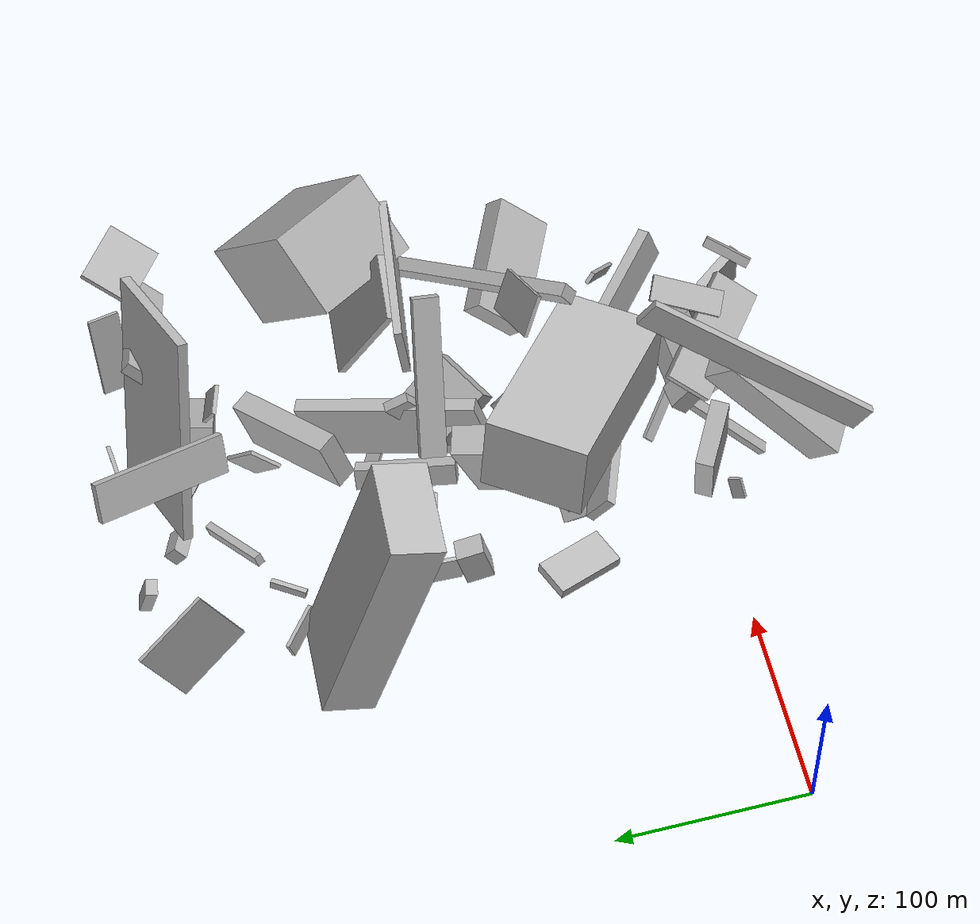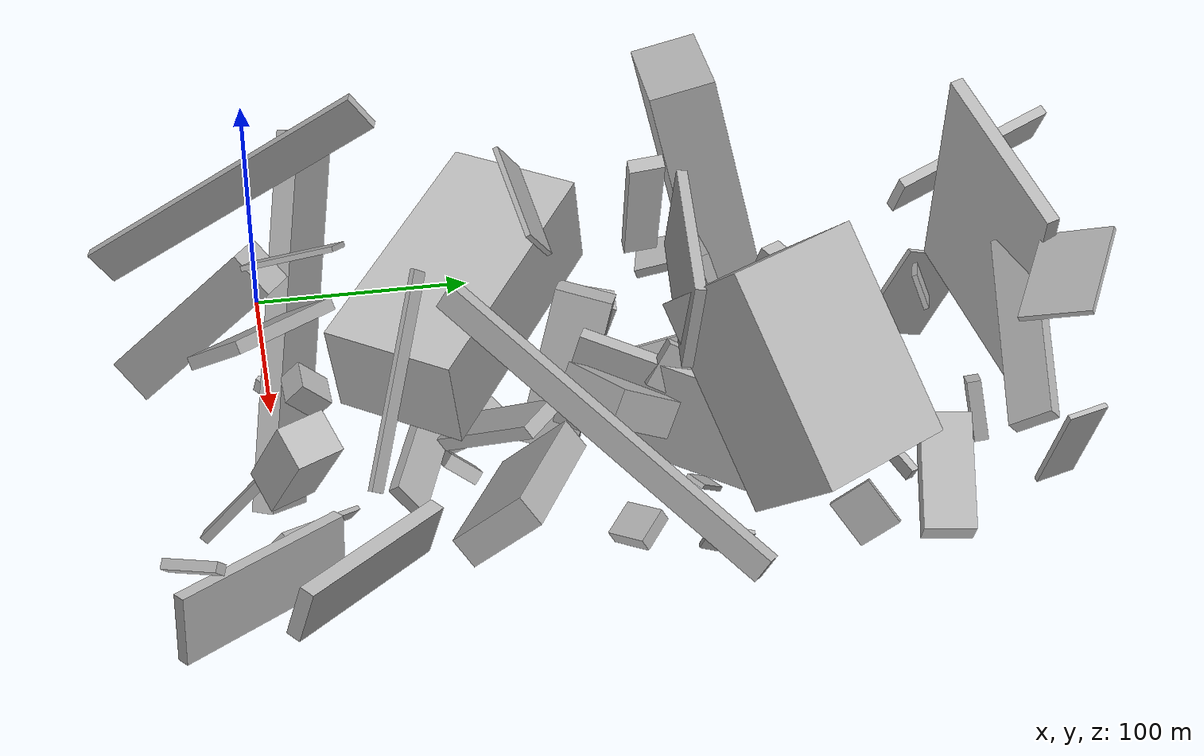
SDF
<sdf version="1.6">
 <world name="default">
  <model name="building_4">
   <static>0</static>
   <pose>182.80358350350366 75.05793901918615 81.25627983369378 0.052977912742376704 -0.2959889521816837 2.4877120915452173</pose>
   <link name="link">
    <gravity>0</gravity>
    <pose>0 0 19.5 0 0 0</pose>
    <collision name="collision"><geometry><box><size>105 52 39</size></box></geometry></collision>
    <visual name="visual">
     <cast_shadows>0</cast_shadows>
     <geometry><box><size>105 52 39</size></box></geometry>
     <material>
      <script>
       <uri>model://HANNAS_wall/materials/scripts</uri>
       <uri>model://HANNAS_wall/materials/textures</uri>
       <name>vrc/HANNAS_wall</name>
      </script>
     </material>
    </visual>
   </link>
  </model>
  <model name="building_5">
   <static>0</static>
   <pose>280.8305112230381 201.21083454206996 117.40529876073163 -1.6112890593165738 -0.9193046591542371 -2.5913730514787088</pose>
   <link name="link">
    <gravity>0</gravity>
    <pose>0 0 27.5 0 0 0</pose>
    <collision name="collision"><geometry><box><size>79 44 55</size></box></geometry></collision>
    <visual name="visual">
     <cast_shadows>0</cast_shadows>
     <geometry><box><size>79 44 55</size></box></geometry>
     <material>
      <script>
       <uri>model://HANNAS_wall/materials/scripts</uri>
       <uri>model://HANNAS_wall/materials/textures</uri>
       <name>vrc/HANNAS_wall</name>
      </script>
     </material>
    </visual>
   </link>
  </model>
  <model name="building_6">
   <static>0</static>
   <pose>282.1729372813604 -36.597284121610826 50.50570288907135 -0.35308780203763046 0.7539027413278987 2.2408650711214086</pose>
   <link name="link">
    <gravity>0</gravity>
    <pose>0 0 2.0 0 0 0</pose>
    <collision name="collision"><geometry><box><size>5 25 4</size></box></geometry></collision>
    <visual name="visual">
     <cast_shadows>0</cast_shadows>
     <geometry><box><size>5 25 4</size></box></geometry>
     <material>
      <script>
       <uri>model://HANNAS_wall/materials/scripts</uri>
       <uri>model://HANNAS_wall/materials/textures</uri>
       <name>vrc/HANNAS_wall</name>
      </script>
     </material>
    </visual>
   </link>
  </model>
  <model name="building_12">
   <static>0</static>
   <pose>154.9563873587294 5.650761414576049 76.65083035795222 1.5159323289314215 0.41175495669101403 2.613163994436163</pose>
   <link name="link">
    <gravity>0</gravity>
    <pose>0 0 4.5 0 0 0</pose>
    <collision name="collision"><geometry><box><size>31 150 9</size></box></geometry></collision>
    <visual name="visual">
     <cast_shadows>0</cast_shadows>
     <geometry><box><size>31 150 9</size></box></geometry>
     <material>
      <script>
       <uri>model://HANNAS_wall/materials/scripts</uri>
       <uri>model://HANNAS_wall/materials/textures</uri>
       <name>vrc/HANNAS_wall</name>
      </script>
     </material>
    </visual>
   </link>
  </model>
  <model name="building_14">
   <static>0</static>
   <pose>188.73639514579293 245.0899746348153 124.96272206139946 -1.2908248602176795 0.5753956940945602 0.47916340130765883</pose>
   <link name="link">
    <gravity>0</gravity>
    <pose>0 0 35.0 0 0 0</pose>
    <collision name="collision"><geometry><box><size>4 20 70</size></box></geometry></collision>
    <visual name="visual">
     <cast_shadows>0</cast_shadows>
     <geometry><box><size>4 20 70</size></box></geometry>
     <material>
      <script>
       <uri>model://HANNAS_wall/materials/scripts</uri>
       <uri>model://HANNAS_wall/materials/textures</uri>
       <name>vrc/HANNAS_wall</name>
      </script>
     </material>
    </visual>
   </link>
  </model>
  <model name="building_18">
   <static>0</static>
   <pose>243.62628033249098 124.98921547650758 24.143643422314117 -1.1151127843351323 -1.0576193037624935 -1.3002501609556982</pose>
   <link name="link">
    <gravity>0</gravity>
    <pose>0 0 8.5 0 0 0</pose>
    <collision name="collision"><geometry><box><size>6 15 17</size></box></geometry></collision>
    <visual name="visual">
     <cast_shadows>0</cast_shadows>
     <geometry><box><size>6 15 17</size></box></geometry>
     <material>
      <script>
       <uri>model://HANNAS_wall/materials/scripts</uri>
       <uri>model://HANNAS_wall/materials/textures</uri>
       <name>vrc/HANNAS_wall</name>
      </script>
     </material>
    </visual>
   </link>
  </model>
  <model name="building_19">
   <static>0</static>
   <pose>201.0057819521384 -11.097750578075441 28.199697078443496 1.6185561497208243 0.8543579153049004 -1.8676976375479786</pose>
   <link name="link">
    <gravity>0</gravity>
    <pose>0 0 3.0 0 0 0</pose>
    <collision name="collision"><geometry><box><size>69 4 6</size></box></geometry></collision>
    <visual name="visual">
     <cast_shadows>0</cast_shadows>
     <geometry><box><size>69 4 6</size></box></geometry>
     <material>
      <script>
       <uri>model://HANNAS_wall/materials/scripts</uri>
       <uri>model://HANNAS_wall/materials/textures</uri>
       <name>vrc/HANNAS_wall</name>
      </script>
     </material>
    </visual>
   </link>
  </model>
  <model name="building_24">
   <static>0</static>
   <pose>184.79832759941667 49.655573684571976 28.877530848192748 2.5118512099150387 -0.18689642946880644 2.784816964141763</pose>
   <link name="link">
    <gravity>0</gravity>
    <pose>0 0 8.5 0 0 0</pose>
    <collision name="collision"><geometry><box><size>45 5 17</size></box></geometry></collision>
    <visual name="visual">
     <cast_shadows>0</cast_shadows>
     <geometry><box><size>45 5 17</size></box></geometry>
     <material>
      <script>
       <uri>model://HANNAS_wall/materials/scripts</uri>
       <uri>model://HANNAS_wall/materials/textures</uri>
       <name>vrc/HANNAS_wall</name>
      </script>
     </material>
    </visual>
   </link>
  </model>
  <model name="building_26">
   <static>0</static>
   <pose>197.83947046262287 277.53757635408533 73.37467138632931 0.2440378320414543 0.4236065094169859 0.26116944950718446</pose>
   <link name="link">
    <gravity>0</gravity>
    <pose>0 0 54.5 0 0 0</pose>
    <collision name="collision"><geometry><box><size>70 5 109</size></box></geometry></collision>
    <visual name="visual">
     <cast_shadows>0</cast_shadows>
     <geometry><box><size>70 5 109</size></box></geometry>
     <material>
      <script>
       <uri>model://HANNAS_wall/materials/scripts</uri>
       <uri>model://HANNAS_wall/materials/textures</uri>
       <name>vrc/HANNAS_wall</name>
      </script>
     </material>
    </visual>
   </link>
  </model>
  <model name="building_33">
   <static>0</static>
   <pose>239.7932896995171 194.93084295848075 42.291740489335425 -0.0018048737827131515 -1.300802228745326 1.159511638491516</pose>
   <link name="link">
    <gravity>0</gravity>
    <pose>0 0 47.0 0 0 0</pose>
    <collision name="collision"><geometry><box><size>41 7 94</size></box></geometry></collision>
    <visual name="visual">
     <cast_shadows>0</cast_shadows>
     <geometry><box><size>41 7 94</size></box></geometry>
     <material>
      <script>
       <uri>model://HANNAS_wall/materials/scripts</uri>
       <uri>model://HANNAS_wall/materials/textures</uri>
       <name>vrc/HANNAS_wall</name>
      </script>
     </material>
    </visual>
   </link>
  </model>
  <model name="building_42">
   <static>0</static>
   <pose>192.7157213353048 124.85466945350338 59.49780146099603 1.3628262631185555 -0.24540779238882335 -0.31049480690275455</pose>
   <link name="link">
    <gravity>0</gravity>
    <pose>0 0 11.5 0 0 0</pose>
    <collision name="collision"><geometry><box><size>15 64 23</size></box></geometry></collision>
    <visual name="visual">
     <cast_shadows>0</cast_shadows>
     <geometry><box><size>15 64 23</size></box></geometry>
     <material>
      <script>
       <uri>model://HANNAS_wall/materials/scripts</uri>
       <uri>model://HANNAS_wall/materials/textures</uri>
       <name>vrc/HANNAS_wall</name>
      </script>
     </material>
    </visual>
   </link>
  </model>
  <model name="building_44">
   <static>0</static>
   <pose>144.52448925676998 187.8369770817975 83.63253837687924 1.557518617228997 0.25014867683263464 -1.6345504022708854</pose>
   <link name="link">
    <gravity>0</gravity>
    <pose>0 0 24.5 0 0 0</pose>
    <collision name="collision"><geometry><box><size>27 150 49</size></box></geometry></collision>
    <visual name="visual">
     <cast_shadows>0</cast_shadows>
     <geometry><box><size>27 150 49</size></box></geometry>
     <material>
      <script>
       <uri>model://HANNAS_wall/materials/scripts</uri>
       <uri>model://HANNAS_wall/materials/textures</uri>
       <name>vrc/HANNAS_wall</name>
      </script>
     </material>
    </visual>
   </link>
  </model>
  <model name="building_51">
   <static>0</static>
   <pose>264.733221526885 172.36234834176554 75.37040072782904 0.32428243443624716 -0.2107488211431847 -0.09069788870111702</pose>
   <link name="link">
    <gravity>0</gravity>
    <pose>0 0 37.0 0 0 0</pose>
    <collision name="collision"><geometry><box><size>33 4 74</size></box></geometry></collision>
    <visual name="visual">
     <cast_shadows>0</cast_shadows>
     <geometry><box><size>33 4 74</size></box></geometry>
     <material>
      <script>
       <uri>model://HANNAS_wall/materials/scripts</uri>
       <uri>model://HANNAS_wall/materials/textures</uri>
       <name>vrc/HANNAS_wall</name>
      </script>
     </material>
    </visual>
   </link>
  </model>
  <model name="building_68">
   <static>0</static>
   <pose>197.68954823277446 85.95492834040306 41.02707966754195 0.3713319054706879 -0.536747820604945 0.49810949543507</pose>
   <link name="link">
    <gravity>0</gravity>
    <pose>0 0 3.0 0 0 0</pose>
    <collision name="collision"><geometry><box><size>67 16 6</size></box></geometry></collision>
    <visual name="visual">
     <cast_shadows>0</cast_shadows>
     <geometry><box><size>67 16 6</size></box></geometry>
     <material>
      <script>
       <uri>model://HANNAS_wall/materials/scripts</uri>
       <uri>model://HANNAS_wall/materials/textures</uri>
       <name>vrc/HANNAS_wall</name>
      </script>
     </material>
    </visual>
   </link>
  </model>
  <model name="building_71">
   <static>0</static>
   <pose>262.8368088394414 -13.914337829048538 28.52626781669997 -1.5646411399307802 -0.03999549623215829 -0.9290117045301228</pose>
   <link name="link">
    <gravity>0</gravity>
    <pose>0 0 2.5 0 0 0</pose>
    <collision name="collision"><geometry><box><size>75 28 5</size></box></geometry></collision>
    <visual name="visual">
     <cast_shadows>0</cast_shadows>
     <geometry><box><size>75 28 5</size></box></geometry>
     <material>
      <script>
       <uri>model://HANNAS_wall/materials/scripts</uri>
       <uri>model://HANNAS_wall/materials/textures</uri>
       <name>vrc/HANNAS_wall</name>
      </script>
     </material>
    </visual>
   </link>
  </model>
  <model name="building_79">
   <static>0</static>
   <pose>144.97532172073107 78.6843841827525 8.695321024136678 -0.0370487934932866 0.1067174064504237 -1.2021800109979863</pose>
   <link name="link">
    <gravity>0</gravity>
    <pose>0 0 3.0 0 0 0</pose>
    <collision name="collision"><geometry><box><size>36 20 6</size></box></geometry></collision>
    <visual name="visual">
     <cast_shadows>0</cast_shadows>
     <geometry><box><size>36 20 6</size></box></geometry>
     <material>
      <script>
       <uri>model://HANNAS_wall/materials/scripts</uri>
       <uri>model://HANNAS_wall/materials/textures</uri>
       <name>vrc/HANNAS_wall</name>
      </script>
     </material>
    </visual>
   </link>
  </model>
  <model name="building_86">
   <static>0</static>
   <pose>229.21808340814266 -4.014487990934506 54.09207085119481 -1.4626850819603021 -0.8847243968433477 0.36858639753987166</pose>
   <link name="link">
    <gravity>0</gravity>
    <pose>0 0 9.5 0 0 0</pose>
    <collision name="collision"><geometry><box><size>46 17 19</size></box></geometry></collision>
    <visual name="visual">
     <cast_shadows>0</cast_shadows>
     <geometry><box><size>46 17 19</size></box></geometry>
     <material>
      <script>
       <uri>model://HANNAS_wall/materials/scripts</uri>
       <uri>model://HANNAS_wall/materials/textures</uri>
       <name>vrc/HANNAS_wall</name>
      </script>
     </material>
    </visual>
   </link>
  </model>
  <model name="building_87">
   <static>0</static>
   <pose>276.87474930274055 112.53352903750906 89.36237907781393 1.053284452702516 -1.0184701785304715 1.3932175354094545</pose>
   <link name="link">
    <gravity>0</gravity>
    <pose>0 0 3.5 0 0 0</pose>
    <collision name="collision"><geometry><box><size>10 150 7</size></box></geometry></collision>
    <visual name="visual">
     <cast_shadows>0</cast_shadows>
     <geometry><box><size>10 150 7</size></box></geometry>
     <material>
      <script>
       <uri>model://HANNAS_wall/materials/scripts</uri>
       <uri>model://HANNAS_wall/materials/textures</uri>
       <name>vrc/HANNAS_wall</name>
      </script>
     </material>
    </visual>
   </link>
  </model>
  <model name="building_94">
   <static>0</static>
   <pose>194.98764021035242 245.1730364768581 18.778830888129193 -1.4973742004381199 -0.4494673796898255 -2.6411898909230405</pose>
   <link name="link">
    <gravity>0</gravity>
    <pose>0 0 2.0 0 0 0</pose>
    <collision name="collision"><geometry><box><size>43 6 4</size></box></geometry></collision>
    <visual name="visual">
     <cast_shadows>0</cast_shadows>
     <geometry><box><size>43 6 4</size></box></geometry>
     <material>
      <script>
       <uri>model://HANNAS_wall/materials/scripts</uri>
       <uri>model://HANNAS_wall/materials/textures</uri>
       <name>vrc/HANNAS_wall</name>
      </script>
     </material>
    </visual>
   </link>
  </model>
  <model name="building_96">
   <static>0</static>
   <pose>283.5645232219683 68.39088656995158 62.831093671311564 -0.8568619608282227 -0.10670012767350853 -0.4429840133270437</pose>
   <link name="link">
    <gravity>0</gravity>
    <pose>0 0 15.5 0 0 0</pose>
    <collision name="collision"><geometry><box><size>61 12 31</size></box></geometry></collision>
    <visual name="visual">
     <cast_shadows>0</cast_shadows>
     <geometry><box><size>61 12 31</size></box></geometry>
     <material>
      <script>
       <uri>model://HANNAS_wall/materials/scripts</uri>
       <uri>model://HANNAS_wall/materials/textures</uri>
       <name>vrc/HANNAS_wall</name>
      </script>
     </material>
    </visual>
   </link>
  </model>
  <model name="building_100">
   <static>0</static>
   <pose>163.3175027391452 -6.54829040491758 132.8515423798928 0.2277947993553356 -0.603644311357102 1.190084627448217</pose>
   <link name="link">
    <gravity>0</gravity>
    <pose>0 0 7.5 0 0 0</pose>
    <collision name="collision"><geometry><box><size>132 4 15</size></box></geometry></collision>
    <visual name="visual">
     <cast_shadows>0</cast_shadows>
     <geometry><box><size>132 4 15</size></box></geometry>
     <material>
      <script>
       <uri>model://HANNAS_wall/materials/scripts</uri>
       <uri>model://HANNAS_wall/materials/textures</uri>
       <name>vrc/HANNAS_wall</name>
      </script>
     </material>
    </visual>
   </link>
  </model>
  <model name="building_102">
   <static>0</static>
   <pose>197.05068423242207 7.87368653762563 65.06146433142462 0.7684974324361102 -0.20761949788170211 -3.099644692266919</pose>
   <link name="link">
    <gravity>0</gravity>
    <pose>0 0 5.0 0 0 0</pose>
    <collision name="collision"><geometry><box><size>14 15 10</size></box></geometry></collision>
    <visual name="visual">
     <cast_shadows>0</cast_shadows>
     <geometry><box><size>14 15 10</size></box></geometry>
     <material>
      <script>
       <uri>model://HANNAS_wall/materials/scripts</uri>
       <uri>model://HANNAS_wall/materials/textures</uri>
       <name>vrc/HANNAS_wall</name>
      </script>
     </material>
    </visual>
   </link>
  </model>
  <model name="building_105">
   <static>0</static>
   <pose>258.4045665779703 259.4052395192392 38.217067799972234 1.6143486060459762 0.7164919999004442 -0.20599987662518712</pose>
   <link name="link">
    <gravity>0</gravity>
    <pose>0 0 10.0 0 0 0</pose>
    <collision name="collision"><geometry><box><size>46 15 20</size></box></geometry></collision>
    <visual name="visual">
     <cast_shadows>0</cast_shadows>
     <geometry><box><size>46 15 20</size></box></geometry>
     <material>
      <script>
       <uri>model://HANNAS_wall/materials/scripts</uri>
       <uri>model://HANNAS_wall/materials/textures</uri>
       <name>vrc/HANNAS_wall</name>
      </script>
     </material>
    </visual>
   </link>
  </model>
  <model name="building_120">
   <static>0</static>
   <pose>222.80487415275718 8.842846656907106 21.487023866916903 0.4118301263867102 -0.5902649508780219 -2.495541873016665</pose>
   <link name="link">
    <gravity>0</gravity>
    <pose>0 0 3.0 0 0 0</pose>
    <collision name="collision"><geometry><box><size>2 52 6</size></box></geometry></collision>
    <visual name="visual">
     <cast_shadows>0</cast_shadows>
     <geometry><box><size>2 52 6</size></box></geometry>
     <material>
      <script>
       <uri>model://HANNAS_wall/materials/scripts</uri>
       <uri>model://HANNAS_wall/materials/textures</uri>
       <name>vrc/HANNAS_wall</name>
      </script>
     </material>
    </visual>
   </link>
  </model>
  <model name="building_129">
   <static>0</static>
   <pose>252.76649434030867 42.89965967738517 101.38300917921957 -0.9663795626660437 0.22961775202047927 -2.384224982997667</pose>
   <link name="link">
    <gravity>0</gravity>
    <pose>0 0 3.0 0 0 0</pose>
    <collision name="collision"><geometry><box><size>2 80 6</size></box></geometry></collision>
    <visual name="visual">
     <cast_shadows>0</cast_shadows>
     <geometry><box><size>2 80 6</size></box></geometry>
     <material>
      <script>
       <uri>model://HANNAS_wall/materials/scripts</uri>
       <uri>model://HANNAS_wall/materials/textures</uri>
       <name>vrc/HANNAS_wall</name>
      </script>
     </material>
    </visual>
   </link>
  </model>
  <model name="building_142">
   <static>0</static>
   <pose>280.6606472069559 282.159119960742 50.40378739966411 0.44476270113769223 -0.07833761941146375 1.8011359726383782</pose>
   <link name="link">
    <gravity>0</gravity>
    <pose>0 0 21.5 0 0 0</pose>
    <collision name="collision"><geometry><box><size>16 2 43</size></box></geometry></collision>
    <visual name="visual">
     <cast_shadows>0</cast_shadows>
     <geometry><box><size>16 2 43</size></box></geometry>
     <material>
      <script>
       <uri>model://HANNAS_wall/materials/scripts</uri>
       <uri>model://HANNAS_wall/materials/textures</uri>
       <name>vrc/HANNAS_wall</name>
      </script>
     </material>
    </visual>
   </link>
  </model>
  <model name="building_148">
   <static>0</static>
   <pose>272.9935659992181 265.2874705503281 112.58389467648365 -2.5723217041317783 -0.583642072720329 1.0126187355645468</pose>
   <link name="link">
    <gravity>0</gravity>
    <pose>0 0 3.0 0 0 0</pose>
    <collision name="collision"><geometry><box><size>17 80 6</size></box></geometry></collision>
    <visual name="visual">
     <cast_shadows>0</cast_shadows>
     <geometry><box><size>17 80 6</size></box></geometry>
     <material>
      <script>
       <uri>model://HANNAS_wall/materials/scripts</uri>
       <uri>model://HANNAS_wall/materials/textures</uri>
       <name>vrc/HANNAS_wall</name>
      </script>
     </material>
    </visual>
   </link>
  </model>
  <model name="building_164">
   <static>0</static>
   <pose>165.1992628782745 157.38300308116342 89.30617300248977 1.021705678414265 -1.1723573151559403 -1.3290419487980647</pose>
   <link name="link">
    <gravity>0</gravity>
    <pose>0 0 9.0 0 0 0</pose>
    <collision name="collision"><geometry><box><size>4 22 18</size></box></geometry></collision>
    <visual name="visual">
     <cast_shadows>0</cast_shadows>
     <geometry><box><size>4 22 18</size></box></geometry>
     <material>
      <script>
       <uri>model://HANNAS_wall/materials/scripts</uri>
       <uri>model://HANNAS_wall/materials/textures</uri>
       <name>vrc/HANNAS_wall</name>
      </script>
     </material>
    </visual>
   </link>
  </model>
  <model name="building_168">
   <static>0</static>
   <pose>292.77227742457313 84.06348936101254 70.34975838269288 0.8632024259589286 1.1815845240260385 -2.555954228664792</pose>
   <link name="link">
    <gravity>0</gravity>
    <pose>0 0 4.0 0 0 0</pose>
    <collision name="collision"><geometry><box><size>2 2 8</size></box></geometry></collision>
    <visual name="visual">
     <cast_shadows>0</cast_shadows>
     <geometry><box><size>2 2 8</size></box></geometry>
     <material>
      <script>
       <uri>model://HANNAS_wall/materials/scripts</uri>
       <uri>model://HANNAS_wall/materials/textures</uri>
       <name>vrc/HANNAS_wall</name>
      </script>
     </material>
    </visual>
   </link>
  </model>
  <model name="building_172">
   <static>0</static>
   <pose>249.76748364898106 143.59678550344267 121.15595691939001 0.11602773695597916 -0.07707295436294058 2.9927620414011034</pose>
   <link name="link">
    <gravity>0</gravity>
    <pose>0 0 16.0 0 0 0</pose>
    <collision name="collision"><geometry><box><size>80 4 32</size></box></geometry></collision>
    <visual name="visual">
     <cast_shadows>0</cast_shadows>
     <geometry><box><size>80 4 32</size></box></geometry>
     <material>
      <script>
       <uri>model://HANNAS_wall/materials/scripts</uri>
       <uri>model://HANNAS_wall/materials/textures</uri>
       <name>vrc/HANNAS_wall</name>
      </script>
     </material>
    </visual>
   </link>
  </model>
  <model name="building_177">
   <static>0</static>
   <pose>248.49588714647624 168.4412995664476 18.451811629545865 2.8608151919829 -0.3473560574651741 -1.5462978007250838</pose>
   <link name="link">
    <gravity>0</gravity>
    <pose>0 0 6.5 0 0 0</pose>
    <collision name="collision"><geometry><box><size>18 2 13</size></box></geometry></collision>
    <visual name="visual">
     <cast_shadows>0</cast_shadows>
     <geometry><box><size>18 2 13</size></box></geometry>
     <material>
      <script>
       <uri>model://HANNAS_wall/materials/scripts</uri>
       <uri>model://HANNAS_wall/materials/textures</uri>
       <name>vrc/HANNAS_wall</name>
      </script>
     </material>
    </visual>
   </link>
  </model>
  <model name="building_178">
   <static>0</static>
   <pose>232.02193947073613 293.04997972606117 60.049961889834506 1.7824408405099683 -1.2403534058390604 3.02582597899931</pose>
   <link name="link">
    <gravity>0</gravity>
    <pose>0 0 1.0 0 0 0</pose>
    <collision name="collision"><geometry><box><size>2 20 2</size></box></geometry></collision>
    <visual name="visual">
     <cast_shadows>0</cast_shadows>
     <geometry><box><size>2 20 2</size></box></geometry>
     <material>
      <script>
       <uri>model://HANNAS_wall/materials/scripts</uri>
       <uri>model://HANNAS_wall/materials/textures</uri>
       <name>vrc/HANNAS_wall</name>
      </script>
     </material>
    </visual>
   </link>
  </model>
  <model name="building_179">
   <static>0</static>
   <pose>204.69328430090488 267.93628572814765 8.32271920632627 -0.40399521191513843 -0.8348429869950846 -1.6585596636374629</pose>
   <link name="link">
    <gravity>0</gravity>
    <pose>0 0 4.0 0 0 0</pose>
    <collision name="collision"><geometry><box><size>8 16 8</size></box></geometry></collision>
    <visual name="visual">
     <cast_shadows>0</cast_shadows>
     <geometry><box><size>8 16 8</size></box></geometry>
     <material>
      <script>
       <uri>model://HANNAS_wall/materials/scripts</uri>
       <uri>model://HANNAS_wall/materials/textures</uri>
       <name>vrc/HANNAS_wall</name>
      </script>
     </material>
    </visual>
   </link>
  </model>
  <model name="building_184">
   <static>0</static>
   <pose>129.93209356553692 230.25147793584244 20.189346611986906 1.4315234407622044 0.2402922324419058 0.8223905128495504</pose>
   <link name="link">
    <gravity>0</gravity>
    <pose>0 0 12.0 0 0 0</pose>
    <collision name="collision"><geometry><box><size>2 10 24</size></box></geometry></collision>
    <visual name="visual">
     <cast_shadows>0</cast_shadows>
     <geometry><box><size>2 10 24</size></box></geometry>
     <material>
      <script>
       <uri>model://HANNAS_wall/materials/scripts</uri>
       <uri>model://HANNAS_wall/materials/textures</uri>
       <name>vrc/HANNAS_wall</name>
      </script>
     </material>
    </visual>
   </link>
  </model>
  <model name="building_187">
   <static>0</static>
   <pose>221.46436710533433 166.72265565588205 21.625145234560108 -0.9490801670253256 -0.29255526679777627 -2.365911231379561</pose>
   <link name="link">
    <gravity>0</gravity>
    <pose>0 0 13.0 0 0 0</pose>
    <collision name="collision"><geometry><box><size>8 2 26</size></box></geometry></collision>
    <visual name="visual">
     <cast_shadows>0</cast_shadows>
     <geometry><box><size>8 2 26</size></box></geometry>
     <material>
      <script>
       <uri>model://HANNAS_wall/materials/scripts</uri>
       <uri>model://HANNAS_wall/materials/textures</uri>
       <name>vrc/HANNAS_wall</name>
      </script>
     </material>
    </visual>
   </link>
  </model>
  <model name="building_190">
   <static>0</static>
   <pose>141.04475078396624 136.8471281402978 64.99626740685493 -2.925865151378262 0.2587876318040471 1.515851479244591</pose>
   <link name="link">
    <gravity>0</gravity>
    <pose>0 0 9.5 0 0 0</pose>
    <collision name="collision"><geometry><box><size>14 12 19</size></box></geometry></collision>
    <visual name="visual">
     <cast_shadows>0</cast_shadows>
     <geometry><box><size>14 12 19</size></box></geometry>
     <material>
      <script>
       <uri>model://HANNAS_wall/materials/scripts</uri>
       <uri>model://HANNAS_wall/materials/textures</uri>
       <name>vrc/HANNAS_wall</name>
      </script>
     </material>
    </visual>
   </link>
  </model>
  <model name="building_193">
   <static>0</static>
   <pose>207.54509011995157 -2.671475326634855 98.32807655428078 0.5109551175016086 -0.1813684836204179 -0.6879201099737895</pose>
   <link name="link">
    <gravity>0</gravity>
    <pose>0 0 2.5 0 0 0</pose>
    <collision name="collision"><geometry><box><size>60 24 5</size></box></geometry></collision>
    <visual name="visual">
     <cast_shadows>0</cast_shadows>
     <geometry><box><size>60 24 5</size></box></geometry>
     <material>
      <script>
       <uri>model://HANNAS_wall/materials/scripts</uri>
       <uri>model://HANNAS_wall/materials/textures</uri>
       <name>vrc/HANNAS_wall</name>
      </script>
     </material>
    </visual>
   </link>
  </model>
  <model name="building_204">
   <static>0</static>
   <pose>218.32761291205944 91.74210478167691 151.05596535832092 0.967579528309521 -0.5741424216073037 -2.9362396673679436</pose>
   <link name="link">
    <gravity>0</gravity>
    <pose>0 0 1.0 0 0 0</pose>
    <collision name="collision"><geometry><box><size>38 21 2</size></box></geometry></collision>
    <visual name="visual">
     <cast_shadows>0</cast_shadows>
     <geometry><box><size>38 21 2</size></box></geometry>
     <material>
      <script>
       <uri>model://HANNAS_wall/materials/scripts</uri>
       <uri>model://HANNAS_wall/materials/textures</uri>
       <name>vrc/HANNAS_wall</name>
      </script>
     </material>
    </visual>
   </link>
  </model>
  <model name="building_212">
   <static>0</static>
   <pose>149.0391910872952 159.1951532734031 30.381510609996546 0.7355096016201296 1.3160683646255584 0.7816038743940866</pose>
   <link name="link">
    <gravity>0</gravity>
    <pose>0 0 1.0 0 0 0</pose>
    <collision name="collision"><geometry><box><size>29 50 2</size></box></geometry></collision>
    <visual name="visual">
     <cast_shadows>0</cast_shadows>
     <geometry><box><size>29 50 2</size></box></geometry>
     <material>
      <script>
       <uri>model://HANNAS_wall/materials/scripts</uri>
       <uri>model://HANNAS_wall/materials/textures</uri>
       <name>vrc/HANNAS_wall</name>
      </script>
     </material>
    </visual>
   </link>
  </model>
  <model name="building_215">
   <static>0</static>
   <pose>230.27851642499525 115.24127190292474 74.5198493097194 2.9987872538507854 -1.0345877092032894 2.2108480389462914</pose>
   <link name="link">
    <gravity>0</gravity>
    <pose>0 0 16.0 0 0 0</pose>
    <collision name="collision"><geometry><box><size>15 32 32</size></box></geometry></collision>
    <visual name="visual">
     <cast_shadows>0</cast_shadows>
     <geometry><box><size>15 32 32</size></box></geometry>
     <material>
      <script>
       <uri>model://HANNAS_wall/materials/scripts</uri>
       <uri>model://HANNAS_wall/materials/textures</uri>
       <name>vrc/HANNAS_wall</name>
      </script>
     </material>
    </visual>
   </link>
  </model>
  <model name="building_223">
   <static>0</static>
   <pose>171.22753916448585 71.21002074599028 10.788201649840605 0.9446451834926625 -0.8115848030455926 2.118011542018187</pose>
   <link name="link">
    <gravity>0</gravity>
    <pose>0 0 8.5 0 0 0</pose>
    <collision name="collision"><geometry><box><size>6 15 17</size></box></geometry></collision>
    <visual name="visual">
     <cast_shadows>0</cast_shadows>
     <geometry><box><size>6 15 17</size></box></geometry>
     <material>
      <script>
       <uri>model://HANNAS_wall/materials/scripts</uri>
       <uri>model://HANNAS_wall/materials/textures</uri>
       <name>vrc/HANNAS_wall</name>
      </script>
     </material>
    </visual>
   </link>
  </model>
  <model name="building_232">
   <static>0</static>
   <pose>180.25809269194286 294.31697720335984 17.1448955614884 2.3436675600126775 1.3123541542685193 0.6042475722250616</pose>
   <link name="link">
    <gravity>0</gravity>
    <pose>0 0 3.0 0 0 0</pose>
    <collision name="collision"><geometry><box><size>27 8 6</size></box></geometry></collision>
    <visual name="visual">
     <cast_shadows>0</cast_shadows>
     <geometry><box><size>27 8 6</size></box></geometry>
     <material>
      <script>
       <uri>model://HANNAS_wall/materials/scripts</uri>
       <uri>model://HANNAS_wall/materials/textures</uri>
       <name>vrc/HANNAS_wall</name>
      </script>
     </material>
    </visual>
   </link>
  </model>
  <model name="building_235">
   <static>0</static>
   <pose>170.06595666554517 222.47505518312082 6.159244128794965 -0.020725497446174617 -0.29315401378745504 2.569485465814824</pose>
   <link name="link">
    <gravity>0</gravity>
    <pose>0 0 2.0 0 0 0</pose>
    <collision name="collision"><geometry><box><size>3 19 4</size></box></geometry></collision>
    <visual name="visual">
     <cast_shadows>0</cast_shadows>
     <geometry><box><size>3 19 4</size></box></geometry>
     <material>
      <script>
       <uri>model://HANNAS_wall/materials/scripts</uri>
       <uri>model://HANNAS_wall/materials/textures</uri>
       <name>vrc/HANNAS_wall</name>
      </script>
     </material>
    </visual>
   </link>
  </model>
  <model name="building_237">
   <static>0</static>
   <pose>163.00844323273978 -22.224791698915556 87.27379032128265 -1.5215244069343365 0.7859103165007365 -2.068458029621007</pose>
   <link name="link">
    <gravity>0</gravity>
    <pose>0 0 8.0 0 0 0</pose>
    <collision name="collision"><geometry><box><size>80 19 16</size></box></geometry></collision>
    <visual name="visual">
     <cast_shadows>0</cast_shadows>
     <geometry><box><size>80 19 16</size></box></geometry>
     <material>
      <script>
       <uri>model://HANNAS_wall/materials/scripts</uri>
       <uri>model://HANNAS_wall/materials/textures</uri>
       <name>vrc/HANNAS_wall</name>
      </script>
     </material>
    </visual>
   </link>
  </model>
  <model name="building_238">
   <static>0</static>
   <pose>147.60545796248908 -4.421966745372135 39.330790760407425 -0.5374506401593705 0.3907694946909043 -0.8024541022812824</pose>
   <link name="link">
    <gravity>0</gravity>
    <pose>0 0 5.5 0 0 0</pose>
    <collision name="collision"><geometry><box><size>2 7 11</size></box></geometry></collision>
    <visual name="visual">
     <cast_shadows>0</cast_shadows>
     <geometry><box><size>2 7 11</size></box></geometry>
     <material>
      <script>
       <uri>model://HANNAS_wall/materials/scripts</uri>
       <uri>model://HANNAS_wall/materials/textures</uri>
       <name>vrc/HANNAS_wall</name>
      </script>
     </material>
    </visual>
   </link>
  </model>
  <model name="building_240">
   <static>0</static>
   <pose>198.40397970615874 135.08227920660747 134.3568679139158 1.3832831320588155 0.8504342088745627 2.960127007264223</pose>
   <link name="link">
    <gravity>0</gravity>
    <pose>0 0 6.5 0 0 0</pose>
    <collision name="collision"><geometry><box><size>80 5 13</size></box></geometry></collision>
    <visual name="visual">
     <cast_shadows>0</cast_shadows>
     <geometry><box><size>80 5 13</size></box></geometry>
     <material>
      <script>
       <uri>model://HANNAS_wall/materials/scripts</uri>
       <uri>model://HANNAS_wall/materials/textures</uri>
       <name>vrc/HANNAS_wall</name>
      </script>
     </material>
    </visual>
   </link>
  </model>
  <model name="building_241">
   <static>0</static>
   <pose>227.79469971384202 244.41196448364775 106.21350911291232 1.972525077104739 -0.16689357176135736 -0.34183484240893236</pose>
   <link name="link">
    <gravity>0</gravity>
    <pose>0 0 1.0 0 0 0</pose>
    <collision name="collision"><geometry><box><size>15 14 2</size></box></geometry></collision>
    <visual name="visual">
     <cast_shadows>0</cast_shadows>
     <geometry><box><size>15 14 2</size></box></geometry>
     <material>
      <script>
       <uri>model://HANNAS_wall/materials/scripts</uri>
       <uri>model://HANNAS_wall/materials/textures</uri>
       <name>vrc/HANNAS_wall</name>
      </script>
     </material>
    </visual>
   </link>
  </model>
  <model name="building_242">
   <static>0</static>
   <pose>211.7188318823788 176.81935606552827 31.506775795941216 1.3059121754924201 -1.0117634867759724 -0.03675448342827378</pose>
   <link name="link">
    <gravity>0</gravity>
    <pose>0 0 25.5 0 0 0</pose>
    <collision name="collision"><geometry><box><size>11 9 51</size></box></geometry></collision>
    <visual name="visual">
     <cast_shadows>0</cast_shadows>
     <geometry><box><size>11 9 51</size></box></geometry>
     <material>
      <script>
       <uri>model://HANNAS_wall/materials/scripts</uri>
       <uri>model://HANNAS_wall/materials/textures</uri>
       <name>vrc/HANNAS_wall</name>
      </script>
     </material>
    </visual>
   </link>
  </model>
  <model name="building_255">
   <static>0</static>
   <pose>292.5300910110719 272.3509295498416 141.8366674855132 0.37340878013289436 0.3328304681261256 -0.5470238263265321</pose>
   <link name="link">
    <gravity>0</gravity>
    <pose>0 0 1.0 0 0 0</pose>
    <collision name="collision"><geometry><box><size>41 27 2</size></box></geometry></collision>
    <visual name="visual">
     <cast_shadows>0</cast_shadows>
     <geometry><box><size>41 27 2</size></box></geometry>
     <material>
      <script>
       <uri>model://HANNAS_wall/materials/scripts</uri>
       <uri>model://HANNAS_wall/materials/textures</uri>
       <name>vrc/HANNAS_wall</name>
      </script>
     </material>
    </visual>
   </link>
  </model>
  <model name="building_259">
   <static>0</static>
   <pose>218.43847387740965 153.91666444511844 83.77116997682185 3.0464485861417243 0.5183373352659265 1.5234151877835125</pose>
   <link name="link">
    <gravity>0</gravity>
    <pose>0 0 9.5 0 0 0</pose>
    <collision name="collision"><geometry><box><size>13 5 19</size></box></geometry></collision>
    <visual name="visual">
     <cast_shadows>0</cast_shadows>
     <geometry><box><size>13 5 19</size></box></geometry>
     <material>
      <script>
       <uri>model://HANNAS_wall/materials/scripts</uri>
       <uri>model://HANNAS_wall/materials/textures</uri>
       <name>vrc/HANNAS_wall</name>
      </script>
     </material>
    </visual>
   </link>
  </model>
  <model name="building_263">
   <static>0</static>
   <pose>243.68957791357548 51.71484718745095 32.26238346676713 -1.118220238731168 1.2753441365328373 -1.8651020257964013</pose>
   <link name="link">
    <gravity>0</gravity>
    <pose>0 0 40.0 0 0 0</pose>
    <collision name="collision"><geometry><box><size>21 6 80</size></box></geometry></collision>
    <visual name="visual">
     <cast_shadows>0</cast_shadows>
     <geometry><box><size>21 6 80</size></box></geometry>
     <material>
      <script>
       <uri>model://HANNAS_wall/materials/scripts</uri>
       <uri>model://HANNAS_wall/materials/textures</uri>
       <name>vrc/HANNAS_wall</name>
      </script>
     </material>
    </visual>
   </link>
  </model>
  <model name="building_264">
   <static>0</static>
   <pose>129.5783159630385 268.2672476781239 27.932025347083847 -0.40222918363663307 0.25629229773227563 0.3709161504728137</pose>
   <link name="link">
    <gravity>0</gravity>
    <pose>0 0 21.5 0 0 0</pose>
    <collision name="collision"><geometry><box><size>2 42 43</size></box></geometry></collision>
    <visual name="visual">
     <cast_shadows>0</cast_shadows>
     <geometry><box><size>2 42 43</size></box></geometry>
     <material>
      <script>
       <uri>model://HANNAS_wall/materials/scripts</uri>
       <uri>model://HANNAS_wall/materials/textures</uri>
       <name>vrc/HANNAS_wall</name>
      </script>
     </material>
    </visual>
   </link>
  </model>
  <model name="building_265">
   <static>0</static>
   <pose>244.38260801184123 230.07270126412 20.682217181188264 2.2974500805444675 -0.1686221505888483 -0.4615938958623147</pose>
   <link name="link">
    <gravity>0</gravity>
    <pose>0 0 9.5 0 0 0</pose>
    <collision name="collision"><geometry><box><size>2 21 19</size></box></geometry></collision>
    <visual name="visual">
     <cast_shadows>0</cast_shadows>
     <geometry><box><size>2 21 19</size></box></geometry>
     <material>
      <script>
       <uri>model://HANNAS_wall/materials/scripts</uri>
       <uri>model://HANNAS_wall/materials/textures</uri>
       <name>vrc/HANNAS_wall</name>
      </script>
     </material>
    </visual>
   </link>
  </model>
  <model name="building_267">
   <static>0</static>
   <pose>231.99420051154206 256.3688681103043 14.928460079403445 -1.3670282766041308 -0.4264751318107938 -0.7958004277945767</pose>
   <link name="link">
    <gravity>0</gravity>
    <pose>0 0 6.5 0 0 0</pose>
    <collision name="collision"><geometry><box><size>10 3 13</size></box></geometry></collision>
    <visual name="visual">
     <cast_shadows>0</cast_shadows>
     <geometry><box><size>10 3 13</size></box></geometry>
     <material>
      <script>
       <uri>model://HANNAS_wall/materials/scripts</uri>
       <uri>model://HANNAS_wall/materials/textures</uri>
       <name>vrc/HANNAS_wall</name>
      </script>
     </material>
    </visual>
   </link>
  </model>
  <model name="building_268">
   <static>0</static>
   <pose>217.68055934112974 6.70718003446324 136.1460068528212 2.391831649674844 -1.1240697810411244 -2.7787941999051937</pose>
   <link name="link">
    <gravity>0</gravity>
    <pose>0 0 6.5 0 0 0</pose>
    <collision name="collision"><geometry><box><size>2 36 13</size></box></geometry></collision>
    <visual name="visual">
     <cast_shadows>0</cast_shadows>
     <geometry><box><size>2 36 13</size></box></geometry>
     <material>
      <script>
       <uri>model://HANNAS_wall/materials/scripts</uri>
       <uri>model://HANNAS_wall/materials/textures</uri>
       <name>vrc/HANNAS_wall</name>
      </script>
     </material>
    </visual>
   </link>
  </model>
  <model name="building_272">
   <static>0</static>
   <pose>206.76014900986615 203.54690117168767 71.64750401533236 0.35304961531817347 0.07825601144620745 2.2223279664119624</pose>
   <link name="link">
    <gravity>0</gravity>
    <pose>0 0 14.5 0 0 0</pose>
    <collision name="collision"><geometry><box><size>11 61 29</size></box></geometry></collision>
    <visual name="visual">
     <cast_shadows>0</cast_shadows>
     <geometry><box><size>11 61 29</size></box></geometry>
     <material>
      <script>
       <uri>model://HANNAS_wall/materials/scripts</uri>
       <uri>model://HANNAS_wall/materials/textures</uri>
       <name>vrc/HANNAS_wall</name>
      </script>
     </material>
    </visual>
   </link>
  </model>
 </world>
</sdf>
